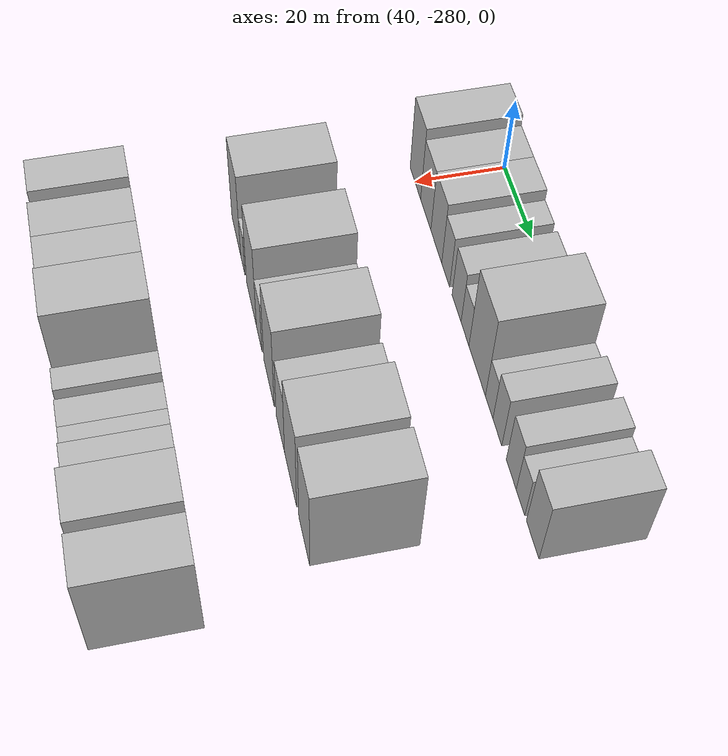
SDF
<sdf version="1.6">
 <world name="default">
  <model name="building_13">
   <static>1</static>
   <pose>50.0000 -279.6714 0 0.000000 0.000000 0.000000</pose>
   <link name="link">
    <pose>0 0 10.50 0 0 0</pose>
    <collision name="collision"><geometry><box><size>20.0000 9.2735 21.0000</size></box></geometry></collision>
    <visual name="visual">
     <cast_shadows>0</cast_shadows>
     <geometry><box><size>20.0000 9.2735 21.0000</size></box></geometry>
     <material>
      <script>
       <uri>model://HANNAS_wall/materials/scripts</uri>
       <uri>model://HANNAS_wall/materials/textures</uri>
       <name>vrc/HANNAS_wall</name>
      </script>
     </material>
    </visual>
   </link>
  </model>
  <model name="building_14">
   <static>1</static>
   <pose>50.0000 -270.6329 0 0.000000 0.000000 0.000000</pose>
   <link name="link">
    <pose>0 0 9.00 0 0 0</pose>
    <collision name="collision"><geometry><box><size>20.0000 8.8036 18.0000</size></box></geometry></collision>
    <visual name="visual">
     <cast_shadows>0</cast_shadows>
     <geometry><box><size>20.0000 8.8036 18.0000</size></box></geometry>
     <material>
      <script>
       <uri>model://HANNAS_wall/materials/scripts</uri>
       <uri>model://HANNAS_wall/materials/textures</uri>
       <name>vrc/HANNAS_wall</name>
      </script>
     </material>
    </visual>
   </link>
  </model>
  <model name="building_15">
   <static>1</static>
   <pose>50.0000 -261.7483 0 0.000000 0.000000 0.000000</pose>
   <link name="link">
    <pose>0 0 9.00 0 0 0</pose>
    <collision name="collision"><geometry><box><size>20.0000 8.9656 18.0000</size></box></geometry></collision>
    <visual name="visual">
     <cast_shadows>0</cast_shadows>
     <geometry><box><size>20.0000 8.9656 18.0000</size></box></geometry>
     <material>
      <script>
       <uri>model://HANNAS_wall/materials/scripts</uri>
       <uri>model://HANNAS_wall/materials/textures</uri>
       <name>vrc/HANNAS_wall</name>
      </script>
     </material>
    </visual>
   </link>
  </model>
  <model name="building_16">
   <static>1</static>
   <pose>50.0000 -254.1331 0 0.000000 0.000000 0.000000</pose>
   <link name="link">
    <pose>0 0 7.50 0 0 0</pose>
    <collision name="collision"><geometry><box><size>20.0000 6.2648 15.0000</size></box></geometry></collision>
    <visual name="visual">
     <cast_shadows>0</cast_shadows>
     <geometry><box><size>20.0000 6.2648 15.0000</size></box></geometry>
     <material>
      <script>
       <uri>model://HANNAS_wall/materials/scripts</uri>
       <uri>model://HANNAS_wall/materials/textures</uri>
       <name>vrc/HANNAS_wall</name>
      </script>
     </material>
    </visual>
   </link>
  </model>
  <model name="building_17">
   <static>1</static>
   <pose>50.0000 -245.4952 0 0.000000 0.000000 0.000000</pose>
   <link name="link">
    <pose>0 0 7.50 0 0 0</pose>
    <collision name="collision"><geometry><box><size>20.0000 7.0111 15.0000</size></box></geometry></collision>
    <visual name="visual">
     <cast_shadows>0</cast_shadows>
     <geometry><box><size>20.0000 7.0111 15.0000</size></box></geometry>
     <material>
      <script>
       <uri>model://HANNAS_wall/materials/scripts</uri>
       <uri>model://HANNAS_wall/materials/textures</uri>
       <name>vrc/HANNAS_wall</name>
      </script>
     </material>
    </visual>
   </link>
  </model>
  <model name="building_18">
   <static>1</static>
   <pose>50.0000 -239.0302 0 0.000000 0.000000 0.000000</pose>
   <link name="link">
    <pose>0 0 6.00 0 0 0</pose>
    <collision name="collision"><geometry><box><size>20.0000 5.9189 12.0000</size></box></geometry></collision>
    <visual name="visual">
     <cast_shadows>0</cast_shadows>
     <geometry><box><size>20.0000 5.9189 12.0000</size></box></geometry>
     <material>
      <script>
       <uri>model://HANNAS_wall/materials/scripts</uri>
       <uri>model://HANNAS_wall/materials/textures</uri>
       <name>vrc/HANNAS_wall</name>
      </script>
     </material>
    </visual>
   </link>
  </model>
  <model name="building_19">
   <static>1</static>
   <pose>50.0000 -230.0739 0 0.000000 0.000000 0.000000</pose>
   <link name="link">
    <pose>0 0 12.00 0 0 0</pose>
    <collision name="collision"><geometry><box><size>20.0000 11.9937 24.0000</size></box></geometry></collision>
    <visual name="visual">
     <cast_shadows>0</cast_shadows>
     <geometry><box><size>20.0000 11.9937 24.0000</size></box></geometry>
     <material>
      <script>
       <uri>model://HANNAS_wall/materials/scripts</uri>
       <uri>model://HANNAS_wall/materials/textures</uri>
       <name>vrc/HANNAS_wall</name>
      </script>
     </material>
    </visual>
   </link>
  </model>
  <model name="building_20">
   <static>1</static>
   <pose>50.0000 -221.4494 0 0.000000 0.000000 0.000000</pose>
   <link name="link">
    <pose>0 0 6.00 0 0 0</pose>
    <collision name="collision"><geometry><box><size>20.0000 5.2555 12.0000</size></box></geometry></collision>
    <visual name="visual">
     <cast_shadows>0</cast_shadows>
     <geometry><box><size>20.0000 5.2555 12.0000</size></box></geometry>
     <material>
      <script>
       <uri>model://HANNAS_wall/materials/scripts</uri>
       <uri>model://HANNAS_wall/materials/textures</uri>
       <name>vrc/HANNAS_wall</name>
      </script>
     </material>
    </visual>
   </link>
  </model>
  <model name="building_21">
   <static>1</static>
   <pose>50.0000 -215.7744 0 0.000000 0.000000 0.000000</pose>
   <link name="link">
    <pose>0 0 7.50 0 0 0</pose>
    <collision name="collision"><geometry><box><size>20.0000 6.0945 15.0000</size></box></geometry></collision>
    <visual name="visual">
     <cast_shadows>0</cast_shadows>
     <geometry><box><size>20.0000 6.0945 15.0000</size></box></geometry>
     <material>
      <script>
       <uri>model://HANNAS_wall/materials/scripts</uri>
       <uri>model://HANNAS_wall/materials/textures</uri>
       <name>vrc/HANNAS_wall</name>
      </script>
     </material>
    </visual>
   </link>
  </model>
  <model name="building_22">
   <static>1</static>
   <pose>50.0000 -206.4561 0 0.000000 0.000000 0.000000</pose>
   <link name="link">
    <pose>0 0 7.50 0 0 0</pose>
    <collision name="collision"><geometry><box><size>20.0000 6.5420 15.0000</size></box></geometry></collision>
    <visual name="visual">
     <cast_shadows>0</cast_shadows>
     <geometry><box><size>20.0000 6.5420 15.0000</size></box></geometry>
     <material>
      <script>
       <uri>model://HANNAS_wall/materials/scripts</uri>
       <uri>model://HANNAS_wall/materials/textures</uri>
       <name>vrc/HANNAS_wall</name>
      </script>
     </material>
    </visual>
   </link>
  </model>
  <model name="building_23">
   <static>1</static>
   <pose>50.0000 -200.4488 0 0.000000 0.000000 0.000000</pose>
   <link name="link">
    <pose>0 0 6.00 0 0 0</pose>
    <collision name="collision"><geometry><box><size>20.0000 5.4726 12.0000</size></box></geometry></collision>
    <visual name="visual">
     <cast_shadows>0</cast_shadows>
     <geometry><box><size>20.0000 5.4726 12.0000</size></box></geometry>
     <material>
      <script>
       <uri>model://HANNAS_wall/materials/scripts</uri>
       <uri>model://HANNAS_wall/materials/textures</uri>
       <name>vrc/HANNAS_wall</name>
      </script>
     </material>
    </visual>
   </link>
  </model>
  <model name="building_24">
   <static>1</static>
   <pose>50.0000 -192.8077 0 0.000000 0.000000 0.000000</pose>
   <link name="link">
    <pose>0 0 9.00 0 0 0</pose>
    <collision name="collision"><geometry><box><size>20.0000 7.8096 18.0000</size></box></geometry></collision>
    <visual name="visual">
     <cast_shadows>0</cast_shadows>
     <geometry><box><size>20.0000 7.8096 18.0000</size></box></geometry>
     <material>
      <script>
       <uri>model://HANNAS_wall/materials/scripts</uri>
       <uri>model://HANNAS_wall/materials/textures</uri>
       <name>vrc/HANNAS_wall</name>
      </script>
     </material>
    </visual>
   </link>
  </model>
  <model name="building_97">
   <static>1</static>
   <pose>90.0000 -272.7715 0 0.000000 0.000000 0.000000</pose>
   <link name="link">
    <pose>0 0 12.00 0 0 0</pose>
    <collision name="collision"><geometry><box><size>20.0000 10.8529 24.0000</size></box></geometry></collision>
    <visual name="visual">
     <cast_shadows>0</cast_shadows>
     <geometry><box><size>20.0000 10.8529 24.0000</size></box></geometry>
     <material>
      <script>
       <uri>model://HANNAS_wall/materials/scripts</uri>
       <uri>model://HANNAS_wall/materials/textures</uri>
       <name>vrc/HANNAS_wall</name>
      </script>
     </material>
    </visual>
   </link>
  </model>
  <model name="building_98">
   <static>1</static>
   <pose>90.0000 -264.8608 0 0.000000 0.000000 0.000000</pose>
   <link name="link">
    <pose>0 0 6.00 0 0 0</pose>
    <collision name="collision"><geometry><box><size>20.0000 4.9684 12.0000</size></box></geometry></collision>
    <visual name="visual">
     <cast_shadows>0</cast_shadows>
     <geometry><box><size>20.0000 4.9684 12.0000</size></box></geometry>
     <material>
      <script>
       <uri>model://HANNAS_wall/materials/scripts</uri>
       <uri>model://HANNAS_wall/materials/textures</uri>
       <name>vrc/HANNAS_wall</name>
      </script>
     </material>
    </visual>
   </link>
  </model>
  <model name="building_99">
   <static>1</static>
   <pose>90.0000 -254.7331 0 0.000000 0.000000 0.000000</pose>
   <link name="link">
    <pose>0 0 12.00 0 0 0</pose>
    <collision name="collision"><geometry><box><size>20.0000 11.2869 24.0000</size></box></geometry></collision>
    <visual name="visual">
     <cast_shadows>0</cast_shadows>
     <geometry><box><size>20.0000 11.2869 24.0000</size></box></geometry>
     <material>
      <script>
       <uri>model://HANNAS_wall/materials/scripts</uri>
       <uri>model://HANNAS_wall/materials/textures</uri>
       <name>vrc/HANNAS_wall</name>
      </script>
     </material>
    </visual>
   </link>
  </model>
  <model name="building_100">
   <static>1</static>
   <pose>90.0000 -246.0174 0 0.000000 0.000000 0.000000</pose>
   <link name="link">
    <pose>0 0 7.50 0 0 0</pose>
    <collision name="collision"><geometry><box><size>20.0000 6.1445 15.0000</size></box></geometry></collision>
    <visual name="visual">
     <cast_shadows>0</cast_shadows>
     <geometry><box><size>20.0000 6.1445 15.0000</size></box></geometry>
     <material>
      <script>
       <uri>model://HANNAS_wall/materials/scripts</uri>
       <uri>model://HANNAS_wall/materials/textures</uri>
       <name>vrc/HANNAS_wall</name>
      </script>
     </material>
    </visual>
   </link>
  </model>
  <model name="building_101">
   <static>1</static>
   <pose>90.0000 -235.4134 0 0.000000 0.000000 0.000000</pose>
   <link name="link">
    <pose>0 0 12.00 0 0 0</pose>
    <collision name="collision"><geometry><box><size>20.0000 11.0635 24.0000</size></box></geometry></collision>
    <visual name="visual">
     <cast_shadows>0</cast_shadows>
     <geometry><box><size>20.0000 11.0635 24.0000</size></box></geometry>
     <material>
      <script>
       <uri>model://HANNAS_wall/materials/scripts</uri>
       <uri>model://HANNAS_wall/materials/textures</uri>
       <name>vrc/HANNAS_wall</name>
      </script>
     </material>
    </visual>
   </link>
  </model>
  <model name="building_102">
   <static>1</static>
   <pose>90.0000 -223.6654 0 0.000000 0.000000 0.000000</pose>
   <link name="link">
    <pose>0 0 9.00 0 0 0</pose>
    <collision name="collision"><geometry><box><size>20.0000 8.4326 18.0000</size></box></geometry></collision>
    <visual name="visual">
     <cast_shadows>0</cast_shadows>
     <geometry><box><size>20.0000 8.4326 18.0000</size></box></geometry>
     <material>
      <script>
       <uri>model://HANNAS_wall/materials/scripts</uri>
       <uri>model://HANNAS_wall/materials/textures</uri>
       <name>vrc/HANNAS_wall</name>
      </script>
     </material>
    </visual>
   </link>
  </model>
  <model name="building_103">
   <static>1</static>
   <pose>90.0000 -213.6221 0 0.000000 0.000000 0.000000</pose>
   <link name="link">
    <pose>0 0 12.00 0 0 0</pose>
    <collision name="collision"><geometry><box><size>20.0000 11.6539 24.0000</size></box></geometry></collision>
    <visual name="visual">
     <cast_shadows>0</cast_shadows>
     <geometry><box><size>20.0000 11.6539 24.0000</size></box></geometry>
     <material>
      <script>
       <uri>model://HANNAS_wall/materials/scripts</uri>
       <uri>model://HANNAS_wall/materials/textures</uri>
       <name>vrc/HANNAS_wall</name>
      </script>
     </material>
    </visual>
   </link>
  </model>
  <model name="building_104">
   <static>1</static>
   <pose>90.0000 -200.7996 0 0.000000 0.000000 0.000000</pose>
   <link name="link">
    <pose>0 0 12.00 0 0 0</pose>
    <collision name="collision"><geometry><box><size>20.0000 9.9910 24.0000</size></box></geometry></collision>
    <visual name="visual">
     <cast_shadows>0</cast_shadows>
     <geometry><box><size>20.0000 9.9910 24.0000</size></box></geometry>
     <material>
      <script>
       <uri>model://HANNAS_wall/materials/scripts</uri>
       <uri>model://HANNAS_wall/materials/textures</uri>
       <name>vrc/HANNAS_wall</name>
      </script>
     </material>
    </visual>
   </link>
  </model>
  <model name="building_172">
   <static>1</static>
   <pose>130.0000 -281.5115 0 0.000000 0.000000 0.000000</pose>
   <link name="link">
    <pose>0 0 9.00 0 0 0</pose>
    <collision name="collision"><geometry><box><size>20.0000 8.5627 18.0000</size></box></geometry></collision>
    <visual name="visual">
     <cast_shadows>0</cast_shadows>
     <geometry><box><size>20.0000 8.5627 18.0000</size></box></geometry>
     <material>
      <script>
       <uri>model://HANNAS_wall/materials/scripts</uri>
       <uri>model://HANNAS_wall/materials/textures</uri>
       <name>vrc/HANNAS_wall</name>
      </script>
     </material>
    </visual>
   </link>
  </model>
  <model name="building_173">
   <static>1</static>
   <pose>130.0000 -274.4885 0 0.000000 0.000000 0.000000</pose>
   <link name="link">
    <pose>0 0 6.00 0 0 0</pose>
    <collision name="collision"><geometry><box><size>20.0000 5.4833 12.0000</size></box></geometry></collision>
    <visual name="visual">
     <cast_shadows>0</cast_shadows>
     <geometry><box><size>20.0000 5.4833 12.0000</size></box></geometry>
     <material>
      <script>
       <uri>model://HANNAS_wall/materials/scripts</uri>
       <uri>model://HANNAS_wall/materials/textures</uri>
       <name>vrc/HANNAS_wall</name>
      </script>
     </material>
    </visual>
   </link>
  </model>
  <model name="building_174">
   <static>1</static>
   <pose>130.0000 -267.4016 0 0.000000 0.000000 0.000000</pose>
   <link name="link">
    <pose>0 0 10.50 0 0 0</pose>
    <collision name="collision"><geometry><box><size>20.0000 8.6906 21.0000</size></box></geometry></collision>
    <visual name="visual">
     <cast_shadows>0</cast_shadows>
     <geometry><box><size>20.0000 8.6906 21.0000</size></box></geometry>
     <material>
      <script>
       <uri>model://HANNAS_wall/materials/scripts</uri>
       <uri>model://HANNAS_wall/materials/textures</uri>
       <name>vrc/HANNAS_wall</name>
      </script>
     </material>
    </visual>
   </link>
  </model>
  <model name="building_175">
   <static>1</static>
   <pose>130.0000 -257.9506 0 0.000000 0.000000 0.000000</pose>
   <link name="link">
    <pose>0 0 10.50 0 0 0</pose>
    <collision name="collision"><geometry><box><size>20.0000 10.2113 21.0000</size></box></geometry></collision>
    <visual name="visual">
     <cast_shadows>0</cast_shadows>
     <geometry><box><size>20.0000 10.2113 21.0000</size></box></geometry>
     <material>
      <script>
       <uri>model://HANNAS_wall/materials/scripts</uri>
       <uri>model://HANNAS_wall/materials/textures</uri>
       <name>vrc/HANNAS_wall</name>
      </script>
     </material>
    </visual>
   </link>
  </model>
  <model name="building_176">
   <static>1</static>
   <pose>130.0000 -247.2739 0 0.000000 0.000000 0.000000</pose>
   <link name="link">
    <pose>0 0 12.00 0 0 0</pose>
    <collision name="collision"><geometry><box><size>20.0000 11.1422 24.0000</size></box></geometry></collision>
    <visual name="visual">
     <cast_shadows>0</cast_shadows>
     <geometry><box><size>20.0000 11.1422 24.0000</size></box></geometry>
     <material>
      <script>
       <uri>model://HANNAS_wall/materials/scripts</uri>
       <uri>model://HANNAS_wall/materials/textures</uri>
       <name>vrc/HANNAS_wall</name>
      </script>
     </material>
    </visual>
   </link>
  </model>
  <model name="building_177">
   <static>1</static>
   <pose>130.0000 -236.1797 0 0.000000 0.000000 0.000000</pose>
   <link name="link">
    <pose>0 0 6.00 0 0 0</pose>
    <collision name="collision"><geometry><box><size>20.0000 5.0461 12.0000</size></box></geometry></collision>
    <visual name="visual">
     <cast_shadows>0</cast_shadows>
     <geometry><box><size>20.0000 5.0461 12.0000</size></box></geometry>
     <material>
      <script>
       <uri>model://HANNAS_wall/materials/scripts</uri>
       <uri>model://HANNAS_wall/materials/textures</uri>
       <name>vrc/HANNAS_wall</name>
      </script>
     </material>
    </visual>
   </link>
  </model>
  <model name="building_178">
   <static>1</static>
   <pose>130.0000 -228.6817 0 0.000000 0.000000 0.000000</pose>
   <link name="link">
    <pose>0 0 6.00 0 0 0</pose>
    <collision name="collision"><geometry><box><size>20.0000 5.9498 12.0000</size></box></geometry></collision>
    <visual name="visual">
     <cast_shadows>0</cast_shadows>
     <geometry><box><size>20.0000 5.9498 12.0000</size></box></geometry>
     <material>
      <script>
       <uri>model://HANNAS_wall/materials/scripts</uri>
       <uri>model://HANNAS_wall/materials/textures</uri>
       <name>vrc/HANNAS_wall</name>
      </script>
     </material>
    </visual>
   </link>
  </model>
  <model name="building_179">
   <static>1</static>
   <pose>130.0000 -223.0602 0 0.000000 0.000000 0.000000</pose>
   <link name="link">
    <pose>0 0 6.00 0 0 0</pose>
    <collision name="collision"><geometry><box><size>20.0000 5.2933 12.0000</size></box></geometry></collision>
    <visual name="visual">
     <cast_shadows>0</cast_shadows>
     <geometry><box><size>20.0000 5.2933 12.0000</size></box></geometry>
     <material>
      <script>
       <uri>model://HANNAS_wall/materials/scripts</uri>
       <uri>model://HANNAS_wall/materials/textures</uri>
       <name>vrc/HANNAS_wall</name>
      </script>
     </material>
    </visual>
   </link>
  </model>
  <model name="building_180">
   <static>1</static>
   <pose>130.0000 -216.6970 0 0.000000 0.000000 0.000000</pose>
   <link name="link">
    <pose>0 0 7.50 0 0 0</pose>
    <collision name="collision"><geometry><box><size>20.0000 7.4330 15.0000</size></box></geometry></collision>
    <visual name="visual">
     <cast_shadows>0</cast_shadows>
     <geometry><box><size>20.0000 7.4330 15.0000</size></box></geometry>
     <material>
      <script>
       <uri>model://HANNAS_wall/materials/scripts</uri>
       <uri>model://HANNAS_wall/materials/textures</uri>
       <name>vrc/HANNAS_wall</name>
      </script>
     </material>
    </visual>
   </link>
  </model>
  <model name="building_181">
   <static>1</static>
   <pose>130.0000 -204.7686 0 0.000000 0.000000 0.000000</pose>
   <link name="link">
    <pose>0 0 12.00 0 0 0</pose>
    <collision name="collision"><geometry><box><size>20.0000 10.4238 24.0000</size></box></geometry></collision>
    <visual name="visual">
     <cast_shadows>0</cast_shadows>
     <geometry><box><size>20.0000 10.4238 24.0000</size></box></geometry>
     <material>
      <script>
       <uri>model://HANNAS_wall/materials/scripts</uri>
       <uri>model://HANNAS_wall/materials/textures</uri>
       <name>vrc/HANNAS_wall</name>
      </script>
     </material>
    </visual>
   </link>
  </model>
  <model name="building_182">
   <static>1</static>
   <pose>130.0000 -192.7357 0 0.000000 0.000000 0.000000</pose>
   <link name="link">
    <pose>0 0 12.00 0 0 0</pose>
    <collision name="collision"><geometry><box><size>20.0000 9.6422 24.0000</size></box></geometry></collision>
    <visual name="visual">
     <cast_shadows>0</cast_shadows>
     <geometry><box><size>20.0000 9.6422 24.0000</size></box></geometry>
     <material>
      <script>
       <uri>model://HANNAS_wall/materials/scripts</uri>
       <uri>model://HANNAS_wall/materials/textures</uri>
       <name>vrc/HANNAS_wall</name>
      </script>
     </material>
    </visual>
   </link>
  </model>
 </world>
</sdf>
